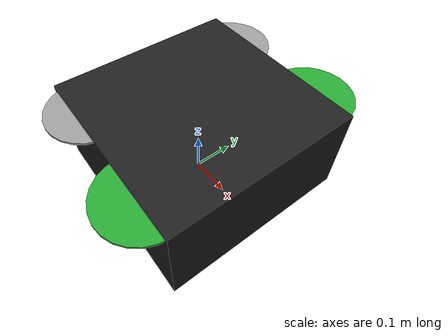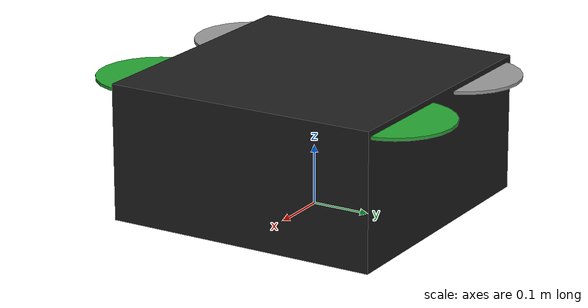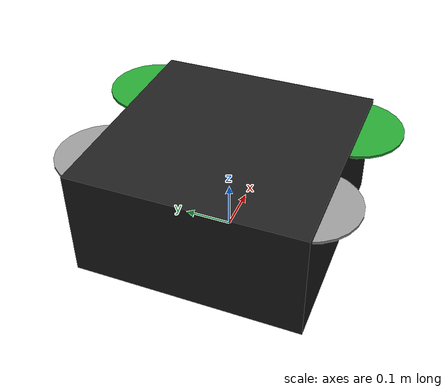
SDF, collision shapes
<sdf version='1.5'>
    <model name='iris_irlock'>
        <include>
        <uri>model://iris</uri>
        </include>
        <link name='camera'>
            <pose>-0 0 0 0 1.5708 0</pose>
            <inertial>
                <mass>0.015</mass>
                <inertia>
                <ixx>4.15e-6</ixx>
                <ixy>0</ixy>
                <ixz>0</ixz>
                <iyy>2.407e-6</iyy>
                <iyz>0</iyz>
                <izz>2.407e-6</izz>
                </inertia>
            </inertial>
            <collision name='collision'>
                <geometry>
                <box>
                    <size>0.01 0.01 0.01</size>
                </box>
                </geometry>
                <max_contacts>10</max_contacts>
                <surface>
                <contact>
                    <ode/>
                </contact>
                <bounce/>
                <friction>
                    <ode/>
                </friction>
                </surface>
            </collision>
            <visual name='visual'>
                <geometry>
                <box>
                    <size>0.01 0.01 0.01</size>
                </box>
                </geometry>
            </visual>
            <sensor name='camera' type='camera'>
                <camera name='__default__'>
                <horizontal_fov>1.047</horizontal_fov>
                <image>
                    <width>320</width>
                    <height>240</height>
                </image>
                <clip>
                    <near>0.1</near>
                    <far>100</far>
                </clip>
                <lens>
                    <type>custom</type>
                    <custom_function>
                    <c1>1.05</c1>
                    <c2>4</c2>
                    <f>1</f>
                    <fun>tan</fun>
                    </custom_function>
                    <scale_to_hfov>1</scale_to_hfov>
                    <cutoff_angle>3.1415</cutoff_angle>
                    <env_texture_size>1080</env_texture_size>
                </lens>
                </camera>
                <always_on>1</always_on>
                <update_rate>30</update_rate>
                <visualize>1</visualize>
                <plugin name='camera_plugin' filename='libgazebo_ros_camera.so'>
                    <robotNamespace></robotNamespace>
                <alwaysOn>true</alwaysOn>
                <imageTopicName>image_raw</imageTopicName>
                <cameraInfoTopicName>camera_info</cameraInfoTopicName>
                <updateRate>30.0</updateRate>
                <cameraName>usb_cam</cameraName>
                <frameName>/robot_camera_link</frameName>
                <CxPrime>320.5</CxPrime>
                <Cx>320.5</Cx>
                <Cy>240.5</Cy>
                <hackBaseline>0</hackBaseline>
                <focalLength>277.191356</focalLength>
                <distortionK1>0.0</distortionK1>
                <distortionK2>0.0</distortionK2>
                <distortionK3>0.0</distortionK3>
                <distortionT1>0.0</distortionT1>
                <distortionT2>0.0</distortionT2>
                </plugin>
                    <!-- GStreamer camera plugin (needs a lot of CPU! Consider lowering the
                        camera image size) -->
                <plugin name="GstCameraPlugin" filename="libgazebo_gst_camera_plugin.so">
                    <robotNamespace></robotNamespace>
                    <udpPort>5600</udpPort>
                </plugin>
            </sensor>
            <self_collide>0</self_collide>
            <kinematic>0</kinematic>
        </link>
        <joint name="camera_joint" type="revolute">
            <child>camera</child>
            <parent>iris::base_link</parent>
            <axis>
                <xyz>0 0 1</xyz>
                <limit>
                <upper>0</upper>
                <lower>0</lower>
                </limit>
            </axis>
        </joint>
    </model>
</sdf>

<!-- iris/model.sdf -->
<sdf version='1.5'>
  <model name='iris-1'>
    <pose>0 0 0.194923 0 0 0</pose>
    <link name='iris-1-base_link'>
      <velocity_decay>
        <linear>0.0</linear>
        <angular>0.0</angular>
      </velocity_decay>
      <inertial>
        <pose>0 0 0 0 0 0</pose>
        <mass>1.5</mass>
        <inertia>
          <ixx>0.008</ixx>
          <ixy>0</ixy>
          <ixz>0</ixz>
          <iyy>0.015</iyy>
          <iyz>0</iyz>
          <izz>0.017</izz>
        </inertia>
      </inertial>
      <collision name='iris-1-base_link_collision'>
        <pose>0 0 -0.08 0 0 0</pose>
        <geometry>
          <box>
            <size>0.47 0.47 0.23</size>
          </box>
        </geometry>
        <surface>
          <contact>
            <ode>
              <max_vel>100.0</max_vel>
              <min_depth>0.001</min_depth>
            </ode>
          </contact>
          <friction>
            <ode>
              <mu>100000.0</mu>
              <mu2>100000.0</mu2>
            </ode>
          </friction>
        </surface>
      </collision>
      <visual name='iris-1-base_link_visual'>
        <geometry>
          <mesh>
            <uri>model://formation/vehicle1/iris/meshes/iris.dae</uri>
          </mesh>
        </geometry>
        <material>
          <script>
            <name>Gazebo/Black</name>
          </script>
        </material>
      </visual>

      <visual name='iris-1-front_left_leg_visual'>
        <pose>0.123 0.22 -0.11 0 0 0</pose>
        <geometry>
          <cylinder>
            <radius>0.005</radius>
            <length>0.17</length>
          </cylinder>
        </geometry>
        <material>
          <script>
            <name>Gazebo/FlatBlack</name>
            <uri>file://media/materials/scripts/gazebo.material</uri>
          </script>
        </material>
      </visual>
      <visual name='iris-1-front_right_leg_visual'>
        <pose>0.123 -0.22 -0.11 0 0 0</pose>
        <geometry>
          <cylinder>
            <radius>0.005</radius>
            <length>0.17</length>
          </cylinder>
        </geometry>
        <material>
          <script>
            <name>Gazebo/FlatBlack</name>
            <uri>file://media/materials/scripts/gazebo.material</uri>
          </script>
        </material>
      </visual>
      <visual name='iris-1-rear_left_leg_visual'>
        <pose>-0.140 0.21 -0.11 0 0 0</pose>
        <geometry>
          <cylinder>
            <radius>0.005</radius>
            <length>0.17</length>
          </cylinder>
        </geometry>
        <material>
          <script>
            <name>Gazebo/FlatBlack</name>
            <uri>file://media/materials/scripts/gazebo.material</uri>
          </script>
        </material>
      </visual>
      <visual name='iris-1-rear_right_leg_visual'>
        <pose>-0.140 -0.21 -0.11 0 0 0</pose>
        <geometry>
          <cylinder>
            <radius>0.005</radius>
            <length>0.17</length>
          </cylinder>
        </geometry>
        <material>
          <script>
            <name>Gazebo/FlatBlack</name>
            <uri>file://media/materials/scripts/gazebo.material</uri>
          </script>
        </material>
      </visual>
    </link>
    <link name='iris-1/ground_truth/odometry_sensorgt_link'>
      <pose>0 0 0 0 -0 0</pose>
      <inertial>
        <pose>0 0 0 0 -0 0</pose>
        <mass>0.15</mass>
        <inertia>
          <ixx>0.0001</ixx>
          <ixy>0</ixy>
          <ixz>0</ixz>
          <iyy>0.0002</iyy>
          <iyz>0</iyz>
          <izz>0.0002</izz>
        </inertia>
      </inertial>
    </link>
    <joint name='iris-1/ground_truth/odometry_sensorgt_joint' type='revolute'>
      <child>iris-1/ground_truth/odometry_sensorgt_link</child>
      <parent>iris-1-base_link</parent>
      <axis>
        <xyz>0 0 1</xyz>
        <limit>
          <lower>0</lower>
          <upper>0</upper>
          <effort>0</effort>
          <velocity>0</velocity>
        </limit>
        <dynamics>
          <damping>1.0</damping>
        </dynamics>
        <use_parent_model_frame>1</use_parent_model_frame>
      </axis>
      <physics>
        <ode>
          <implicit_spring_damper>1</implicit_spring_damper>
        </ode>
      </physics>
    </joint>
    <link name='iris-1/imu_link'>
      <inertial>
        <pose>0 0 0 0 0 0</pose>
        <mass>0.15</mass>
        <inertia>
          <ixx>0.00001</ixx>
          <ixy>0</ixy>
          <ixz>0</ixz>
          <iyy>0.00002</iyy>
          <iyz>0</iyz>
          <izz>0.00002</izz>
        </inertia>
      </inertial>
      <sensor name="iris-1-imu_sensor" type="imu">
        <pose>0 0 0 3.141593 0 0</pose>
        <always_on>1</always_on>
        <update_rate>1000.0</update_rate>
      </sensor>
    </link>
    <joint name='iris-1/imu_joint' type='revolute'>
      <child>iris-1/imu_link</child>
      <parent>iris-1-base_link</parent>
      <axis>
        <xyz>0 0 1</xyz>
        <limit>
          <lower>0</lower>
          <upper>0</upper>
          <effort>0</effort>
          <velocity>0</velocity>
        </limit>
        <dynamics>
          <damping>1.0</damping>
        </dynamics>
        <use_parent_model_frame>1</use_parent_model_frame>
      </axis>
      <physics>
        <ode>
          <implicit_spring_damper>1</implicit_spring_damper>
        </ode>
      </physics>
    </joint>
    <link name='iris-1-rotor_0'>
      <pose>0.13 -0.22 0.023 0 -0 0</pose>
      <inertial>
        <pose>0 0 0 0 -0 0</pose>
        <mass>0.025</mass>
        <inertia>
          <ixx>9.75e-06</ixx>
          <ixy>0</ixy>
          <ixz>0</ixz>
          <iyy>0.000166704</iyy>
          <iyz>0</iyz>
          <izz>0.000167604</izz>
        </inertia>
      </inertial>
      <collision name='iris-1-rotor_0_collision'>
        <pose>0 0 0 0 -0 0</pose>
        <geometry>
          <cylinder>
            <length>0.005</length>
            <radius>0.1</radius>
          </cylinder>
        </geometry>
        <surface>
          <contact>
            <ode/>
          </contact>
          <friction>
            <ode/>
          </friction>
        </surface>
      </collision>
      <visual name='iris-1-rotor_0_visual'>
        <pose>0 0 0 0 -0 0</pose>
        <geometry>
          <mesh>
            <scale>1 1 1</scale>
            <uri>model://formation/vehicle1/iris/meshes/iris_prop_ccw.dae</uri>
          </mesh>
        </geometry>
        <material>
          <script>
            <name>Gazebo/Green</name>
            <uri>__default__</uri>
          </script>
        </material>
      </visual>
      <gravity>1</gravity>
      <velocity_decay/>
      <self_collide>0</self_collide>
    </link>
    <joint name='iris-1-rotor_0_joint' type='revolute'>
      <child>iris-1-rotor_0</child>
      <parent>iris-1-base_link</parent>
      <axis>
        <xyz>0 0 1</xyz>
        <limit>
          <lower>-1e+16</lower>
          <upper>1e+16</upper>
        </limit>
        <dynamics>
          <damping>0.004</damping>
        </dynamics>
        <use_parent_model_frame>1</use_parent_model_frame>
      </axis>
      <physics>
        <ode>
          <implicit_spring_damper>1</implicit_spring_damper>
        </ode>
      </physics>
    </joint>
    <link name='iris-1-rotor_1'>
      <pose>-0.13 0.2 0.023 0 -0 0</pose>
      <inertial>
        <pose>0 0 0 0 -0 0</pose>
        <mass>0.025</mass>
        <inertia>
          <ixx>9.75e-06</ixx>
          <ixy>0</ixy>
          <ixz>0</ixz>
          <iyy>0.000166704</iyy>
          <iyz>0</iyz>
          <izz>0.000167604</izz>
        </inertia>
      </inertial>
      <collision name='iris-1-rotor_1_collision'>
        <pose>0 0 0 0 -0 0</pose>
        <geometry>
          <cylinder>
            <length>0.005</length>
            <radius>0.1</radius>
          </cylinder>
        </geometry>
        <surface>
          <contact>
            <ode/>
          </contact>
          <friction>
            <ode/>
          </friction>
        </surface>
      </collision>
      <visual name='iris-1-rotor_1_visual'>
        <pose>0 0 0 0 -0 0</pose>
        <geometry>
          <mesh>
            <scale>1 1 1</scale>
            <uri>model://formation/vehicle1/iris/meshes/iris_prop_ccw.dae</uri>
          </mesh>
        </geometry>
        <material>
          <script>
            <name>Gazebo/Grey</name>
            <uri>__default__</uri>
          </script>
        </material>
      </visual>
      <gravity>1</gravity>
      <velocity_decay/>
      <self_collide>0</self_collide>
    </link>
    <joint name='iris-1-rotor_1_joint' type='revolute'>
      <child>iris-1-rotor_1</child>
      <parent>iris-1-base_link</parent>
      <axis>
        <xyz>0 0 1</xyz>
        <limit>
          <lower>-1e+16</lower>
          <upper>1e+16</upper>
        </limit>
        <dynamics>
          <damping>0.004</damping>
        </dynamics>
        <use_parent_model_frame>1</use_parent_model_frame>
      </axis>
      <physics>
        <ode>
          <implicit_spring_damper>1</implicit_spring_damper>
        </ode>
      </physics>
    </joint>
    <link name='iris-1-rotor_2'>
      <pose>0.13 0.22 0.023 0 -0 0</pose>
      <inertial>
        <pose>0 0 0 0 -0 0</pose>
        <mass>0.025</mass>
        <inertia>
          <ixx>9.75e-06</ixx>
          <ixy>0</ixy>
          <ixz>0</ixz>
          <iyy>0.000166704</iyy>
          <iyz>0</iyz>
          <izz>0.000167604</izz>
        </inertia>
      </inertial>
      <collision name='iris-1-rotor_2_collision'>
        <pose>0 0 0 0 -0 0</pose>
        <geometry>
          <cylinder>
            <length>0.005</length>
            <radius>0.1</radius>
          </cylinder>
        </geometry>
        <surface>
          <contact>
            <ode/>
          </contact>
          <friction>
            <ode/>
          </friction>
        </surface>
      </collision>
      <visual name='iris-1-rotor_2_visual'>
        <pose>0 0 0 0 -0 0</pose>
        <geometry>
          <mesh>
            <scale>1 1 1</scale>
            <uri>model://formation/vehicle1/iris/meshes/iris_prop_cw.dae</uri>
          </mesh>
        </geometry>
        <material>
          <script>
            <name>Gazebo/Green</name>
            <uri>__default__</uri>
          </script>
        </material>
      </visual>
      <gravity>1</gravity>
      <velocity_decay/>
      <self_collide>0</self_collide>
    </link>
    <joint name='iris-1-rotor_2_joint' type='revolute'>
      <child>iris-1-rotor_2</child>
      <parent>iris-1-base_link</parent>
      <axis>
        <xyz>0 0 1</xyz>
        <limit>
          <lower>-1e+16</lower>
          <upper>1e+16</upper>
        </limit>
        <dynamics>
          <damping>0.004</damping>
        </dynamics>
        <use_parent_model_frame>1</use_parent_model_frame>
      </axis>
      <physics>
        <ode>
          <implicit_spring_damper>1</implicit_spring_damper>
        </ode>
      </physics>
    </joint>
    <link name='iris-1-rotor_3'>
      <pose>-0.13 -0.2 0.023 0 -0 0</pose>
      <inertial>
        <pose>0 0 0 0 -0 0</pose>
        <mass>0.025</mass>
        <inertia>
          <ixx>9.75e-06</ixx>
          <ixy>0</ixy>
          <ixz>0</ixz>
          <iyy>0.000166704</iyy>
          <iyz>0</iyz>
          <izz>0.000167604</izz>
        </inertia>
      </inertial>
      <collision name='iris-1-rotor_3_collision'>
        <pose>0 0 0 0 -0 0</pose>
        <geometry>
          <cylinder>
            <length>0.005</length>
            <radius>0.1</radius>
          </cylinder>
        </geometry>
        <surface>
          <contact>
            <ode/>
          </contact>
          <friction>
            <ode/>
          </friction>
        </surface>
      </collision>
      <visual name='iris-1-rotor_3_visual'>
        <pose>0 0 0 0 -0 0</pose>
        <geometry>
          <mesh>
            <scale>1 1 1</scale>
            <uri>model://formation/vehicle1/iris/meshes/iris_prop_cw.dae</uri>
          </mesh>
        </geometry>
        <material>
          <script>
            <name>Gazebo/Grey</name>
            <uri>__default__</uri>
          </script>
        </material>
      </visual>
      <gravity>1</gravity>
      <velocity_decay/>
      <self_collide>0</self_collide>
    </link>
    <joint name='iris-1-rotor_3_joint' type='revolute'>
      <child>iris-1-rotor_3</child>
      <parent>iris-1-base_link</parent>
      <axis>
        <xyz>0 0 1</xyz>
        <limit>
          <lower>-1e+16</lower>
          <upper>1e+16</upper>
        </limit>
        <dynamics>
          <damping>0.004</damping>
        </dynamics>
        <use_parent_model_frame>1</use_parent_model_frame>
      </axis>
      <physics>
        <ode>
          <implicit_spring_damper>1</implicit_spring_damper>
        </ode>
      </physics>
    </joint>
    <static>0</static>
  </model>
</sdf>
